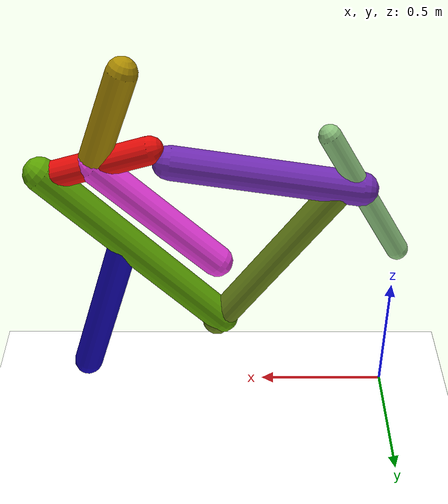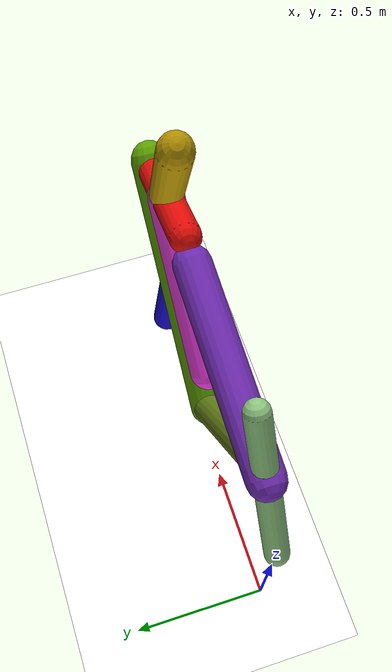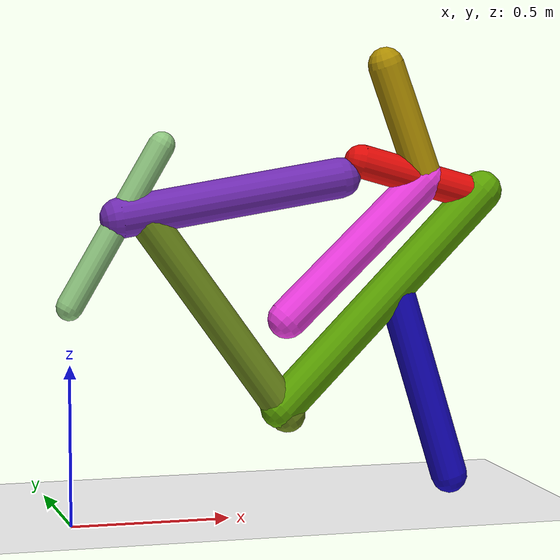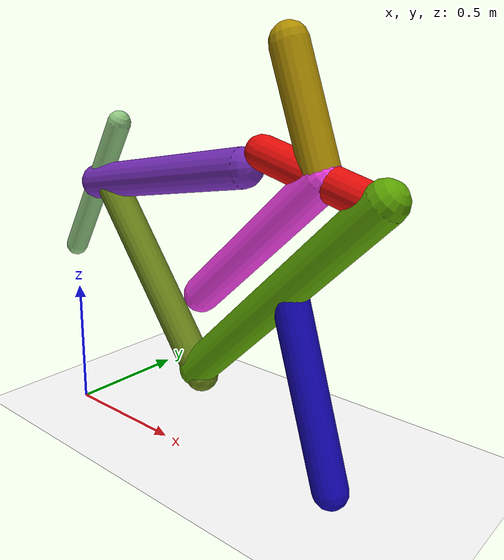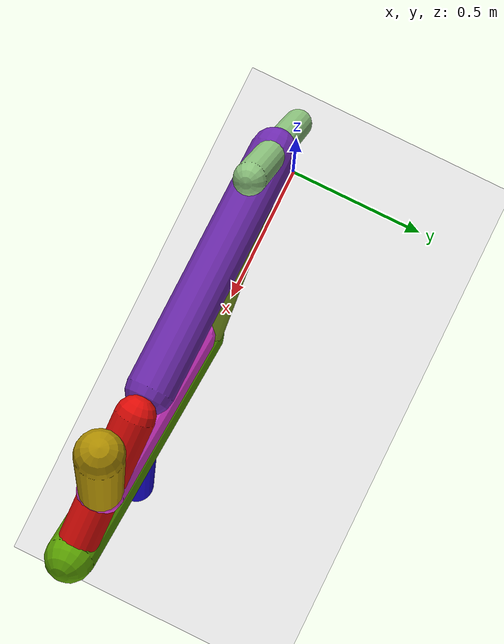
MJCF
<mujoco model="morphology">
  <option timestep="0.01"/>
  <default>
    <default class="/"/>
  </default>
  <asset>
    <texture name="texplane" type="2d" builtin="checker" rgb1="0.1 0.2 0.3" rgb2="0.2 0.3 0.4" width="300" height="300"/>
    <material name="MatPlane" class="/" texture="texplane" texrepeat="20 20" specular="1" shininess="1" reflectance="0.5"/>
  </asset>
  <worldbody>
    <light name="//unnamed_light_0" class="/" directional="true" pos="0 0 1.5" dir="0 0 -1.3" cutoff="1e+02" exponent="1" diffuse="1 1 1" specular="0.1 0.1 0.1"/>
    <geom name="ground" class="/" type="plane" size="15 15 0.5" material="MatPlane" rgba="1 1 1 1"/>
    <body name="body" pos="0 0 0.68">
      <geom name="geom0" class="/" type="capsule" contype="1" conaffinity="1" condim="3" size="0.042" rgba="0.56 0.78 0.5 1" friction="0.4 0.1 0.1" fromto="0 0 0 0.29 0 0.49"/>
      <body name="body1" pos="0.16 0 0.27">
        <geom name="geom1" class="/" type="capsule" contype="1" conaffinity="1" condim="3" size="0.064" rgba="0.44 0.17 0.7 1" friction="0.4 0.1 0.1" fromto="0 0 0 0.7 0 0.11"/>
        <body name="body2" pos="0.069 0 0.011">
          <geom name="geom2" class="/" type="capsule" contype="1" conaffinity="1" condim="3" size="0.058" rgba="0.42 0.53 0.1 1" friction="0.4 0.1 0.1" fromto="0 0 0 0.46 0 -0.64"/>
          <body name="body3" pos="0.44 0 -0.62">
            <geom name="geom3" class="/" type="capsule" contype="1" conaffinity="1" condim="3" size="0.065" rgba="0.36 0.64 0.0051 1" friction="0.4 0.1 0.1" fromto="0 0 0 0.66 0 0.67"/>
            <body name="body4" pos="0.64 0 0.66">
              <geom name="geom4" class="/" type="capsule" contype="1" conaffinity="1" condim="3" size="0.053" rgba="0.89 0.048 0.032 1" friction="0.4 0.1 0.1" fromto="0 0 0 -0.38 0 0.11"/>
              <body name="body5" pos="-0.17 0 0.05">
                <geom name="geom5" class="/" type="capsule" contype="1" conaffinity="1" condim="3" size="0.062" rgba="0.94 0.24 0.89 1" friction="0.4 0.1 0.1" fromto="0 0 0 -0.45 0 -0.43"/>
              </body>
              <body name="body6" pos="-0.17 0 0.049">
                <geom name="geom6" class="/" type="capsule" contype="1" conaffinity="1" condim="3" size="0.057" rgba="0.69 0.56 0.0066 1" friction="0.4 0.1 0.1" fromto="0 0 0 -0.13 0 0.36"/>
                <joint name="joint6" class="/" type="hinge" axis="0 1 0" limited="true" stiffness="20" range="-43 43" armature="0.1" damping="2"/>
              </body>
              <joint name="joint4" class="/" type="hinge" axis="0 1 0" limited="true" stiffness="20" range="-38 38" armature="0.1" damping="2"/>
            </body>
            <body name="body7" pos="0.37 0 0.38">
              <geom name="geom7" class="/" type="capsule" contype="1" conaffinity="1" condim="3" size="0.058" rgba="0.08 0.024 0.74 1" friction="0.4 0.1 0.1" fromto="0 0 0 0.19 0 -0.62"/>
              <joint name="joint7" class="/" type="hinge" axis="0 1 0" limited="true" stiffness="20" range="-33 33" armature="0.1" damping="2"/>
            </body>
            <joint name="joint3" class="/" type="hinge" axis="0 1 0" limited="true" stiffness="20" range="-62 62" armature="0.1" damping="2"/>
          </body>
          <joint name="joint2" class="/" type="hinge" axis="0 1 0" limited="true" stiffness="20" range="-38 38" armature="0.1" damping="2"/>
        </body>
        <joint name="joint1" class="/" type="hinge" axis="0 1 0" limited="true" stiffness="20" range="-66 66" armature="0.1" damping="2"/>
      </body>
      <joint name="rootx" class="/" type="slide" axis="1 0 0" limited="false" stiffness="0" armature="0" damping="0"/>
      <joint name="rootz" class="/" type="slide" axis="0 0 1" limited="false" stiffness="0" armature="0" damping="0"/>
      <joint name="rooty" class="/" type="hinge" axis="0 1 0" limited="false" stiffness="0" armature="0" damping="0"/>
    </body>
  </worldbody>
  <actuator>
    <motor name="motor6" class="/" ctrllimited="true" ctrlrange="-1 1" gear="1.1e+02" joint="joint6"/>
    <motor name="motor4" class="/" ctrllimited="true" ctrlrange="-1 1" gear="1.1e+02" joint="joint4"/>
    <motor name="motor7" class="/" ctrllimited="true" ctrlrange="-1 1" gear="1.9e+02" joint="joint7"/>
    <motor name="motor3" class="/" ctrllimited="true" ctrlrange="-1 1" gear="1.6e+02" joint="joint3"/>
    <motor name="motor2" class="/" ctrllimited="true" ctrlrange="-1 1" gear="1.7e+02" joint="joint2"/>
    <motor name="motor1" class="/" ctrllimited="true" ctrlrange="-1 1" gear="1.6e+02" joint="joint1"/>
  </actuator>
  <sensor>
    <subtreelinvel name="velocity" body="body"/>
  </sensor>
</mujoco>
